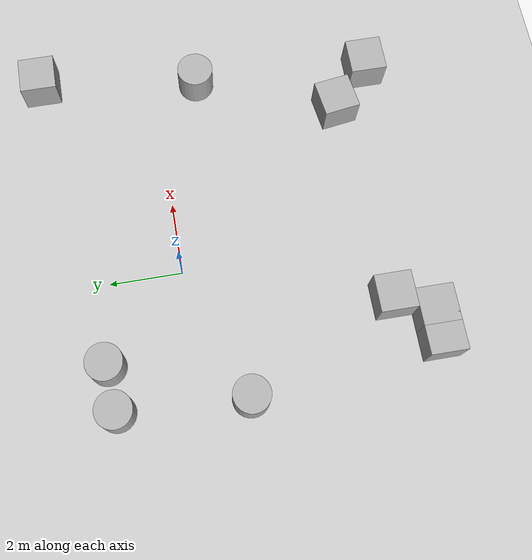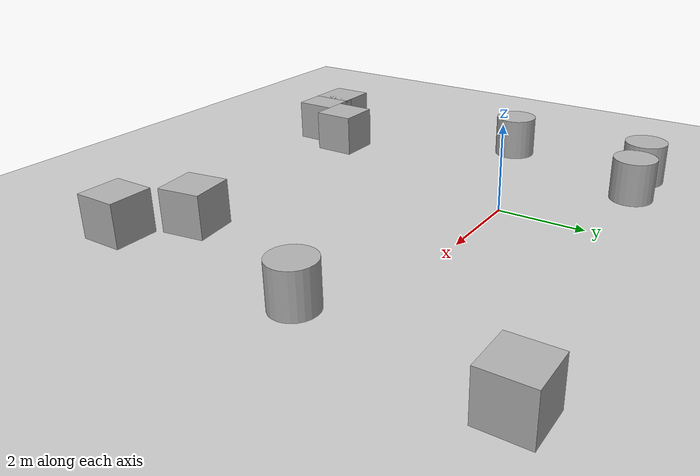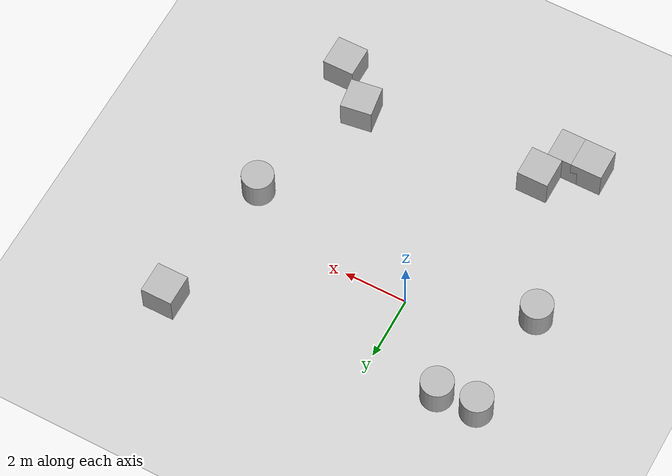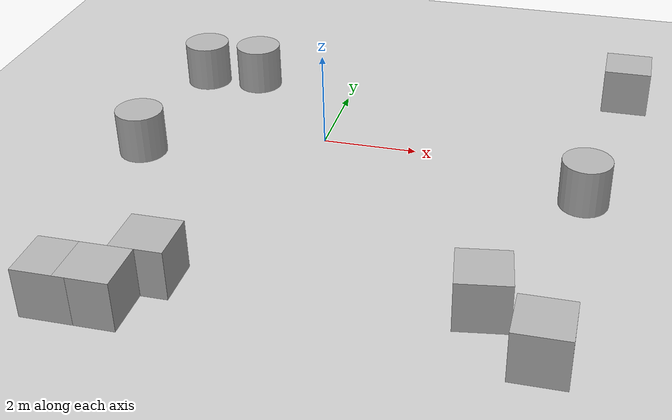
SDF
<sdf version="1.9">
 <world name="my_world2">
  <physics name="1ms" type="ignored">
   <max_step_size>0.001</max_step_size>
   <real_time_factor>1</real_time_factor>
   <real_time_update_rate>1000</real_time_update_rate>
  </physics>
  <plugin name="ignition::gazebo::systems::Physics" filename="ignition-gazebo-physics-system"/>
  <plugin name="ignition::gazebo::systems::UserCommands" filename="ignition-gazebo-user-commands-system"/>
  <plugin name="ignition::gazebo::systems::SceneBroadcaster" filename="ignition-gazebo-scene-broadcaster-system"/>
  <plugin name="ignition::gazebo::systems::Contact" filename="ignition-gazebo-contact-system"/>
  <spherical_coordinates>
   <surface_model>EARTH_WGS84</surface_model>
   <world_frame_orientation>ENU</world_frame_orientation>
   <latitude_deg>30.0</latitude_deg>
   <longitude_deg>30.0</longitude_deg>
   <elevation>0</elevation>
   <heading_deg>0</heading_deg>
  </spherical_coordinates>
  <gravity>0 0 -9.8</gravity>
  <magnetic_field>6e-06 2.3e-05 -4.2e-05</magnetic_field>
  <atmosphere type="adiabatic"/>
  <scene><ambient>0.4 0.4 0.4 1</ambient><background>0.7 0.7 0.7 1</background><shadows>true</shadows></scene>
  <model name="ground_plane">
   <static>true</static>
   <link name="link">
    <collision name="collision">
     <geometry><plane><normal>0 0 1</normal><size>100 100</size></plane></geometry>
    </collision>
    <visual name="visual">
     <geometry><plane><normal>0 0 1</normal><size>100 100</size></plane></geometry>
     <material>
      <ambient>0.8 0.8 0.8 1</ambient>
      <diffuse>0.8 0.8 0.8 1</diffuse>
      <specular>0.8 0.8 0.8 1</specular>
     </material>
    </visual>
    <inertial>
     <mass>1</mass>
     <inertia><ixx>1</ixx><ixy>0</ixy><ixz>0</ixz><iyy>1</iyy><iyz>0</iyz><izz>1</izz></inertia>
    </inertial>
   </link>
  </model>
  <model name="box_3">
   <pose>4.1974 -5.07331 0.5 0 -0 0.145488</pose>
   <link name="box_link">
    <inertial>
     <inertia><ixx>0.16666</ixx><ixy>0</ixy><ixz>0</ixz><iyy>0.16666</iyy><iyz>0</iyz><izz>0.16666</izz></inertia>
     <mass>1</mass>
    </inertial>
    <collision name="box_collision"><geometry><box><size>1 1 1</size></box></geometry></collision>
    <visual name="box_visual">
     <geometry><box><size>1 1 1</size></box></geometry>
     <material>
      <ambient>0.3 0.3 0.3 1</ambient>
      <diffuse>0.7 0.7 0.7 1</diffuse>
      <specular>1 1 1 1</specular>
     </material>
    </visual>
   </link>
   <static>false</static>
  </model>
  <model name="box_4">
   <pose>6.23423 3.23961 0.5 0 -0 1e-06</pose>
   <link name="box_link">
    <inertial>
     <inertia><ixx>0.16666</ixx><ixy>0</ixy><ixz>0</ixz><iyy>0.16666</iyy><iyz>0</iyz><izz>0.16666</izz></inertia>
     <mass>1</mass>
    </inertial>
    <collision name="box_collision"><geometry><box><size>1 1 1</size></box></geometry></collision>
    <visual name="box_visual">
     <geometry><box><size>1 1 1</size></box></geometry>
     <material>
      <ambient>0.3 0.3 0.3 1</ambient>
      <diffuse>0.7 0.7 0.7 1</diffuse>
      <specular>1 1 1 1</specular>
     </material>
    </visual>
   </link>
   <static>false</static>
  </model>
  <model name="box_6">
   <pose>-1.64558 -5.43827 0.5 -0 0 -5e-06</pose>
   <link name="box_link">
    <inertial>
     <inertia><ixx>0.16666</ixx><ixy>0</ixy><ixz>0</ixz><iyy>0.16666</iyy><iyz>0</iyz><izz>0.16666</izz></inertia>
     <mass>1</mass>
    </inertial>
    <collision name="box_collision"><geometry><box><size>1 1 1</size></box></geometry></collision>
    <visual name="box_visual">
     <geometry><box><size>1 1 1</size></box></geometry>
     <material>
      <ambient>0.3 0.3 0.3 1</ambient>
      <diffuse>0.7 0.7 0.7 1</diffuse>
      <specular>1 1 1 1</specular>
     </material>
    </visual>
   </link>
   <static>false</static>
  </model>
  <model name="box_9">
   <pose>-2.93458 -6.43827 0.5 -0 -0 0</pose>
   <link name="box_link">
    <inertial>
     <inertia><ixx>0.16666</ixx><ixy>0</ixy><ixz>0</ixz><iyy>0.16666</iyy><iyz>0</iyz><izz>0.16666</izz></inertia>
     <mass>1</mass>
    </inertial>
    <collision name="box_collision"><geometry><box><size>1 1 1</size></box></geometry></collision>
    <visual name="box_visual">
     <geometry><box><size>1 1 1</size></box></geometry>
     <material>
      <ambient>0.3 0.3 0.3 1</ambient>
      <diffuse>0.7 0.7 0.7 1</diffuse>
      <specular>1 1 1 1</specular>
     </material>
    </visual>
   </link>
   <static>false</static>
  </model>
  <model name="cylinder">
   <pose>5.63373 -1.23092 0.499999 0 -0 0.013028</pose>
   <link name="cylinder_link">
    <inertial>
     <inertia>
      <ixx>0.14580000000000001</ixx>
      <ixy>0</ixy>
      <ixz>0</ixz>
      <iyy>0.14580000000000001</iyy>
      <iyz>0</iyz>
      <izz>0.125</izz>
     </inertia>
     <mass>1</mass>
    </inertial>
    <collision name="cylinder_collision">
     <geometry><cylinder><radius>0.5</radius><length>1</length></cylinder></geometry>
    </collision>
    <visual name="cylinder_visual">
     <geometry><cylinder><radius>0.5</radius><length>1</length></cylinder></geometry>
     <material>
      <ambient>0.3 0.3 0.3 1</ambient>
      <diffuse>0.7 0.7 0.7 1</diffuse>
      <specular>1 1 1 1</specular>
     </material>
    </visual>
   </link>
   <static>false</static>
  </model>
  <model name="cylinder_0">
   <pose>-3.64794 -1.27957 0.499999 0 0 -0.03411</pose>
   <link name="cylinder_link">
    <inertial>
     <inertia>
      <ixx>0.14580000000000001</ixx>
      <ixy>0</ixy>
      <ixz>0</ixz>
      <iyy>0.14580000000000001</iyy>
      <iyz>0</iyz>
      <izz>0.125</izz>
     </inertia>
     <mass>1</mass>
    </inertial>
    <collision name="cylinder_collision">
     <geometry><cylinder><radius>0.5</radius><length>1</length></cylinder></geometry>
    </collision>
    <visual name="cylinder_visual">
     <geometry><cylinder><radius>0.5</radius><length>1</length></cylinder></geometry>
     <material>
      <ambient>0.3 0.3 0.3 1</ambient>
      <diffuse>0.7 0.7 0.7 1</diffuse>
      <specular>1 1 1 1</specular>
     </material>
    </visual>
   </link>
   <static>false</static>
  </model>
  <model name="cylinder_1">
   <pose>-2.2412 2.29588 0.499999 0 0 -0</pose>
   <link name="cylinder_link">
    <inertial>
     <inertia>
      <ixx>0.14580000000000001</ixx>
      <ixy>0</ixy>
      <ixz>0</ixz>
      <iyy>0.14580000000000001</iyy>
      <iyz>0</iyz>
      <izz>0.125</izz>
     </inertia>
     <mass>1</mass>
    </inertial>
    <collision name="cylinder_collision">
     <geometry><cylinder><radius>0.5</radius><length>1</length></cylinder></geometry>
    </collision>
    <visual name="cylinder_visual">
     <geometry><cylinder><radius>0.5</radius><length>1</length></cylinder></geometry>
     <material>
      <ambient>0.3 0.3 0.3 1</ambient>
      <diffuse>0.7 0.7 0.7 1</diffuse>
      <specular>1 1 1 1</specular>
     </material>
    </visual>
   </link>
   <static>false</static>
  </model>
  <model name="cylinder_2">
   <pose>-3.46785 2.19653 0.499999 0 -0 0</pose>
   <link name="cylinder_link">
    <inertial>
     <inertia>
      <ixx>0.14580000000000001</ixx>
      <ixy>0</ixy>
      <ixz>0</ixz>
      <iyy>0.14580000000000001</iyy>
      <iyz>0</iyz>
      <izz>0.125</izz>
     </inertia>
     <mass>1</mass>
    </inertial>
    <collision name="cylinder_collision">
     <geometry><cylinder><radius>0.5</radius><length>1</length></cylinder></geometry>
    </collision>
    <visual name="cylinder_visual">
     <geometry><cylinder><radius>0.5</radius><length>1</length></cylinder></geometry>
     <material>
      <ambient>0.3 0.3 0.3 1</ambient>
      <diffuse>0.7 0.7 0.7 1</diffuse>
      <specular>1 1 1 1</specular>
     </material>
    </visual>
   </link>
   <static>false</static>
  </model>
  <model name="box_1">
   <pose>5.32014 -6.14901 0.5 0 0 -0</pose>
   <link name="box_link">
    <inertial>
     <inertia><ixx>0.16666</ixx><ixy>0</ixy><ixz>0</ixz><iyy>0.16666</iyy><iyz>0</iyz><izz>0.16666</izz></inertia>
     <mass>1</mass>
    </inertial>
    <collision name="box_collision"><geometry><box><size>1 1 1</size></box></geometry></collision>
    <visual name="box_visual">
     <geometry><box><size>1 1 1</size></box></geometry>
     <material>
      <ambient>0.3 0.3 0.3 1</ambient>
      <diffuse>0.7 0.7 0.7 1</diffuse>
      <specular>1 1 1 1</specular>
     </material>
    </visual>
   </link>
   <static>false</static>
  </model>
  <model name="box_2">
   <pose>-2.16225 -6.43827 0.5 -0 0 -1e-06</pose>
   <link name="box_link">
    <inertial>
     <inertia><ixx>0.16666</ixx><ixy>0</ixy><ixz>0</ixz><iyy>0.16666</iyy><iyz>0</iyz><izz>0.16666</izz></inertia>
     <mass>1</mass>
    </inertial>
    <collision name="box_collision"><geometry><box><size>1 1 1</size></box></geometry></collision>
    <visual name="box_visual">
     <geometry><box><size>1 1 1</size></box></geometry>
     <material>
      <ambient>0.3 0.3 0.3 1</ambient>
      <diffuse>0.7 0.7 0.7 1</diffuse>
      <specular>1 1 1 1</specular>
     </material>
    </visual>
   </link>
   <static>false</static>
  </model>
  <light name="sun" type="directional">
   <pose>0 0 10 0 -0 0</pose>
   <intensity>1</intensity>
   <direction>-0.5 0.1 -0.9</direction>
   <diffuse>0.8 0.8 0.8 1</diffuse>
   <specular>0.2 0.2 0.2 1</specular>
   <attenuation>
    <range>1000</range>
    <linear>0.01</linear>
    <constant>0.90000000000000002</constant>
    <quadratic>0.001</quadratic>
   </attenuation>
   <spot><inner_angle>0</inner_angle><outer_angle>0</outer_angle><falloff>0</falloff></spot>
  </light>
 </world>
</sdf>
